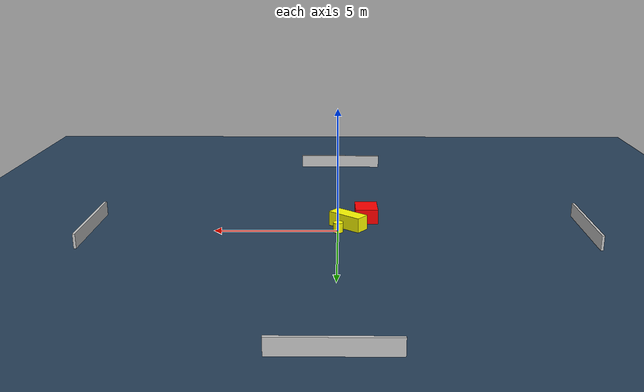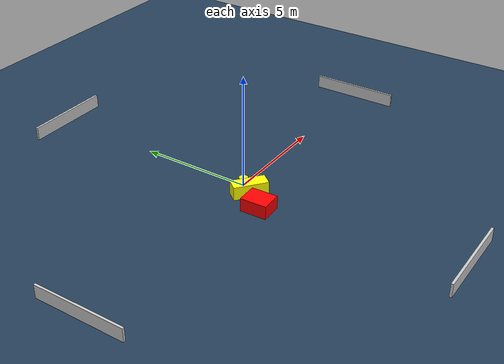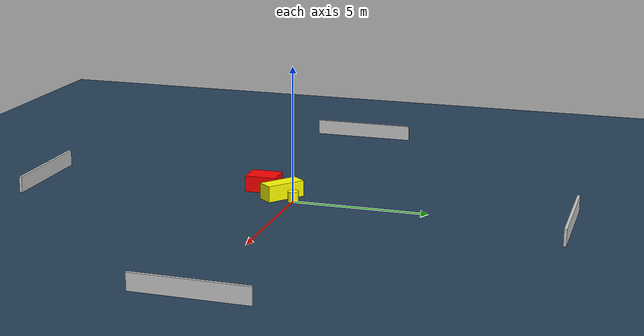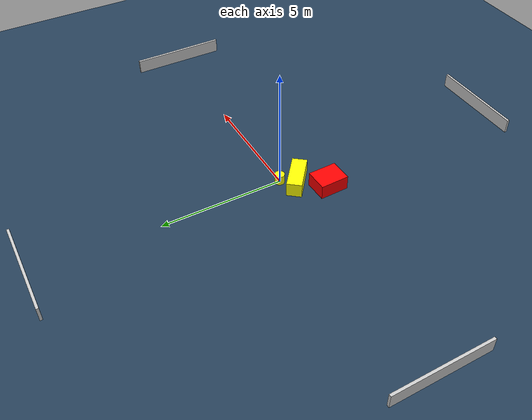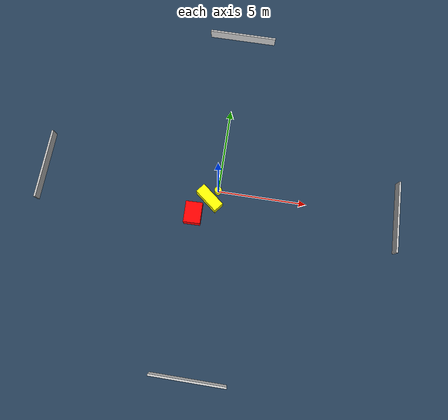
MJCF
<?xml version="1.0" ?>
<mujoco model="generated_environment">
  <option timestep="0.01" integrator="RK4" cone="elliptic"/>
  <default>
    <geom density="1"/>
  </default>
  <asset>
    <texture builtin="gradient" height="3072" name="skybox" rgb1="0.3 0.5 0.7" rgb2="0 0 0" type="skybox" width="512"/>
    <texture builtin="checker" height="300" name="groundplane" rgb1="0.2 0.3 0.4" rgb2="0.1 0.2 0.3" type="2d" width="300"/>
    <material name="groundplane" reflectance="0.2" texrepeat="5 5" texture="groundplane"/>
  </asset>
  <worldbody>
    <light dir="0 0 -1" directional="true" pos="0 0 1.5"/>
    <geom condim="3" friction="0.5 0.005 0.001" material="groundplane" name="floor" pos="0 0 0" size="0 0 0.05" type="plane"/>
    <body name="walls">
      <geom name="wall_1" condim="4" pos="-10.0 0.0 0.3" rgba="0.800000011920929 0.800000011920929 0.800000011920929 1.0" size="0.05 2.0 0.3" type="box"/>
      <geom name="wall_2" condim="4" pos="10.0 0.0 0.3" rgba="0.800000011920929 0.800000011920929 0.800000011920929 1.0" size="0.05 2.0 0.3" type="box"/>
      <geom name="wall_3" condim="4" pos="0.0 -10.0 0.3" rgba="0.800000011920929 0.800000011920929 0.800000011920929 1.0" size="2.0 0.05 0.3" type="box"/>
      <geom name="wall_4" condim="4" pos="0.0 10.0 0.3" rgba="0.800000011920929 0.800000011920929 0.800000011920929 1.0" size="2.0 0.05 0.3" type="box"/>
    </body>
    <body name="robot">
      <joint name="joint_x" type="slide" pos="0 0 0" axis="1 0 0"/>
      <joint name="joint_y" type="slide" pos="0 0 0" axis="0 1 0"/>
      <geom name="robot" type="cylinder" pos="0.0 0.0 0.2" size="0.2 0.2 0.0" mass="5.0" friction="1.0 0.005 0.0001" condim="4" rgba="1.0 1.0 0.0 1.0"/>
    </body>
    <body name="obstacle_1_movable">
      <geom name="obstacle_1_movable" condim="4" pos="-0.4012503205582208 -0.5493156265285547 0.3" euler="0 0 321.3453247021174" friction="0.0 0.005 0.001" rgba="1.0 1.0 0.0 1.0" size="0.761837500002742 0.301879533017461 0.3" type="box" mass="0.1"/>
      <joint type="free"/>
    </body>
    <body name="obstacle_2_static">
      <geom name="obstacle_2_static" condim="4" pos="-1.166861578070999 -1.5112807248080027 0.3" euler="0 0 271.54853333325536" friction="0.0 0.005 0.001" rgba="1.0 0.0 0.0 1.0" size="0.5904578835564878 0.4665867616343878 0.3" type="box"/>
    </body>
  </worldbody>
  <actuator>
    <motor name="actuator_x" joint="joint_x" gear="1" ctrlrange="-1 1"/>
    <motor name="actuator_y" joint="joint_y" gear="1" ctrlrange="-1 1"/>
  </actuator>
</mujoco>
